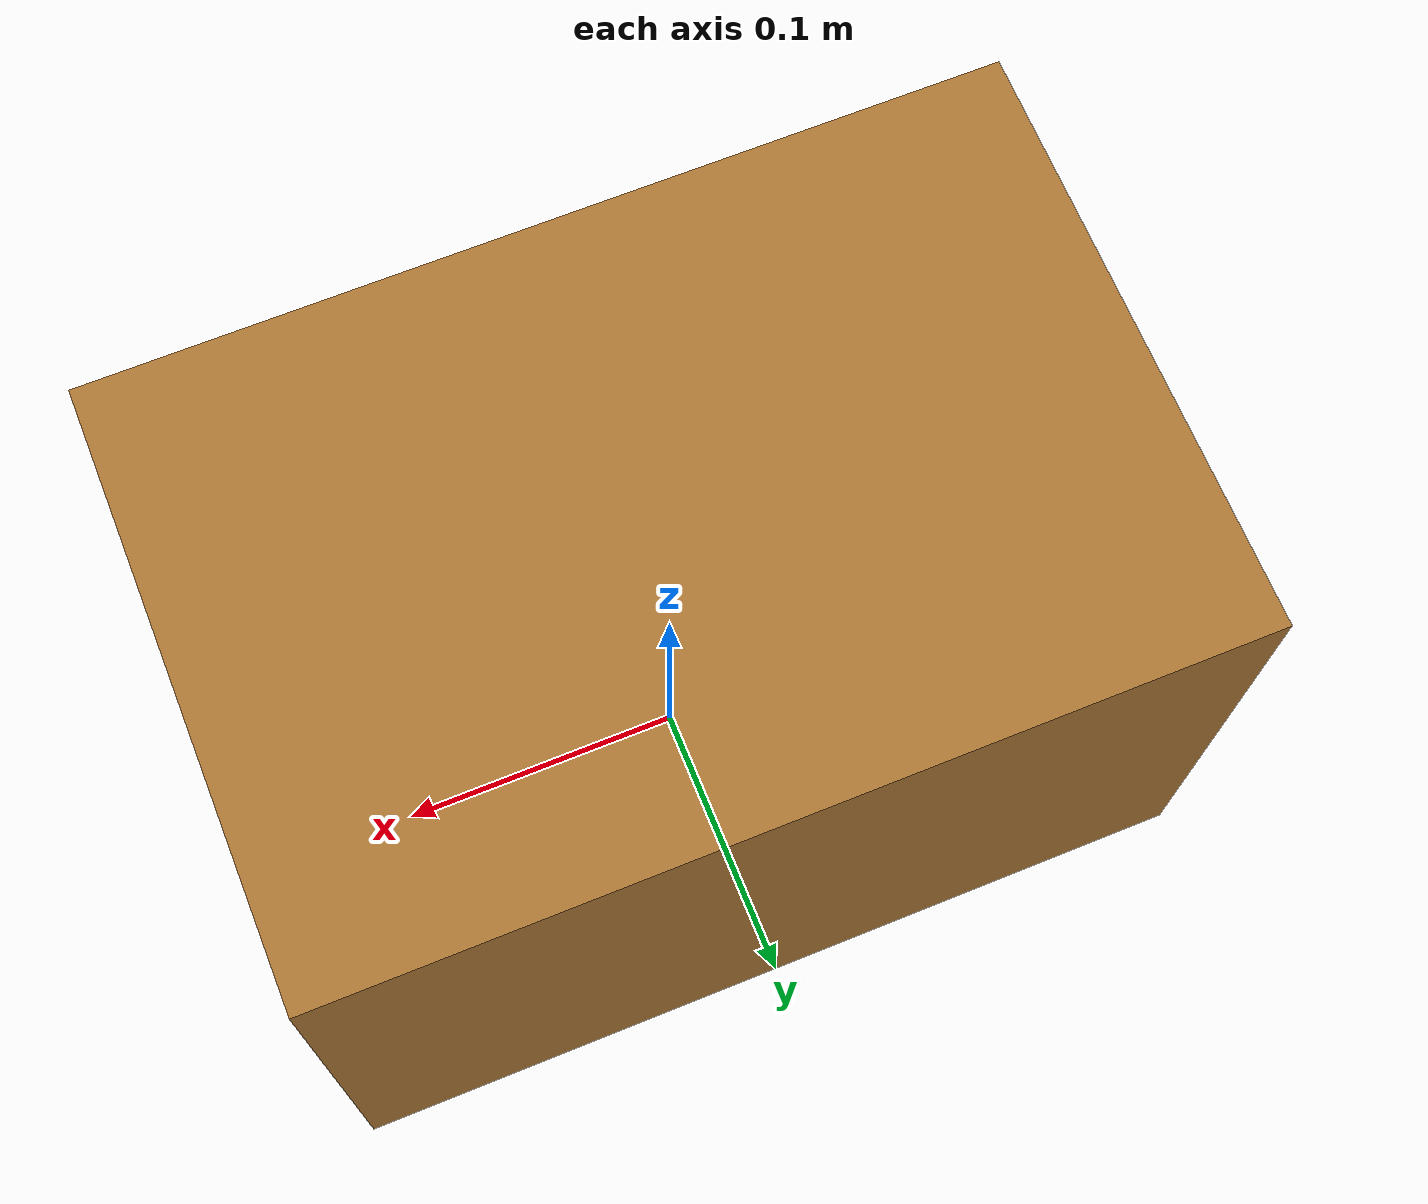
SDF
<?xml version="1.0"?>
<sdf version="1.8">
  <!-- Text-only CI fixture: same 300x200x200 mm box and 1.5 kg mass as the
       generated artifact, but no organizer-provided binary STL in git. -->
  <model name="item_box_300x200x200">
    <link name="link">
      <inertial>
        <pose>0 0 0.1 0 0 0</pose>
        <mass>1.5</mass>
        <inertia>
          <ixx>0.010000000</ixx><iyy>0.016250000</iyy><izz>0.016250000</izz>
          <ixy>0</ixy><ixz>0</ixz><iyz>0</iyz>
        </inertia>
      </inertial>
      <collision name="collision">
        <pose>0 0 0.1 0 0 0</pose>
        <geometry><box><size>0.3 0.2 0.2</size></box></geometry>
        <surface><friction><ode><mu>0.8</mu><mu2>0.8</mu2></ode></friction></surface>
      </collision>
      <visual name="visual">
        <pose>0 0 0.1 0 0 0</pose>
        <geometry><box><size>0.3 0.2 0.2</size></box></geometry>
        <material><ambient>0.65 0.45 0.2 1</ambient><diffuse>0.65 0.45 0.2 1</diffuse></material>
      </visual>
    </link>
  </model>
</sdf>
